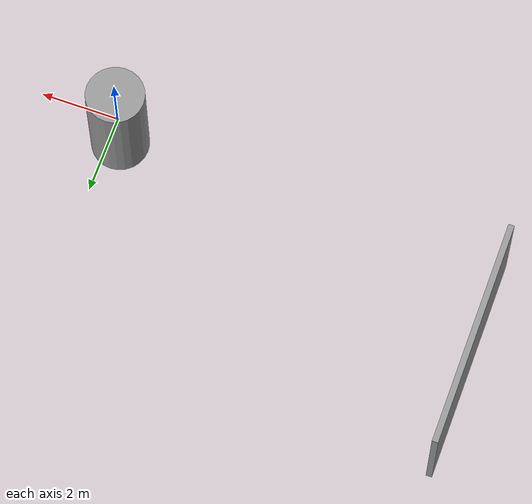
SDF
<?xml version='1.0'?>
<sdf version='1.6'>
  <model name='unit_cylinder'>
    <link name='link'>
      <inertial>
        <mass>6.74216</mass>
        <inertia>
          <ixx>6.16343</ixx>
          <ixy>0</ixy>
          <ixz>0</ixz>
          <iyy>6.16343</iyy>
          <iyz>0</iyz>
          <izz>1.86234</izz>
        </inertia>
        <pose frame=''>0 0 0 0 -0 0</pose>
      </inertial>
      <self_collide>0</self_collide>
      <enable_wind>0</enable_wind>
      <kinematic>0</kinematic>
      <pose frame=''>0 0 0 0 -0 0</pose>
      <visual name='visual'>
        <geometry>
          <cylinder>
            <radius>0.743268</radius>
            <length>3.05166</length>
          </cylinder>
        </geometry>
        <material>
          <script>
            <name>Gazebo/Grey</name>
            <uri>file://media/materials/scripts/gazebo.material</uri>
          </script>
        </material>
        <pose frame=''>0 0 0 0 -0 0</pose>
        <transparency>0</transparency>
        <cast_shadows>1</cast_shadows>
      </visual>
      <collision name='collision'>
        <laser_retro>0</laser_retro>
        <max_contacts>10</max_contacts>
        <pose frame=''>0 0 0 0 -0 0</pose>
        <geometry>
          <cylinder>
            <radius>0.743268</radius>
            <length>3.05166</length>
          </cylinder>
        </geometry>
        <surface>
          <friction>
            <ode>
              <mu>1</mu>
              <mu2>1</mu2>
              <fdir1>0 0 0</fdir1>
              <slip1>0</slip1>
              <slip2>0</slip2>
            </ode>
            <torsional>
              <coefficient>1</coefficient>
              <patch_radius>0</patch_radius>
              <surface_radius>0</surface_radius>
              <use_patch_radius>1</use_patch_radius>
              <ode>
                <slip>0</slip>
              </ode>
            </torsional>
          </friction>
          <bounce>
            <restitution_coefficient>0</restitution_coefficient>
            <threshold>1e+06</threshold>
          </bounce>
          <contact>
            <collide_without_contact>0</collide_without_contact>
            <collide_without_contact_bitmask>1</collide_without_contact_bitmask>
            <collide_bitmask>1</collide_bitmask>
            <ode>
              <soft_cfm>0</soft_cfm>
              <soft_erp>0.2</soft_erp>
              <kp>1e+13</kp>
              <kd>1</kd>
              <max_vel>0.01</max_vel>
              <min_depth>0</min_depth>
            </ode>
            <bullet>
              <split_impulse>1</split_impulse>
              <split_impulse_penetration_threshold>-0.01</split_impulse_penetration_threshold>
              <soft_cfm>0</soft_cfm>
              <soft_erp>0.2</soft_erp>
              <kp>1e+13</kp>
              <kd>1</kd>
            </bullet>
          </contact>
        </surface>
      </collision>
    </link>
    <link name='link_0'>
      <inertial>
        <mass>2.57692</mass>
        <inertia>
          <ixx>8.98703</ixx>
          <ixy>0</ixy>
          <ixz>0</ixz>
          <iyy>1.78597</iyy>
          <iyz>0</iyz>
          <izz>7.21131</izz>
        </inertia>
        <pose frame=''>0 0 0 0 -0 0</pose>
      </inertial>
      <pose frame=''>-10.1923 2.83685 -4.8e-05 -3e-06 -4e-06 -0</pose>
      <visual name='visual'>
        <pose frame=''>0 0 0 0 -0 0</pose>
        <geometry>
          <box>
            <size>0.154446 5.79286 2.87974</size>
          </box>
        </geometry>
        <material>
          <lighting>1</lighting>
          <script>
            <uri>file://media/materials/scripts/gazebo.material</uri>
            <name>Gazebo/Grey</name>
          </script>
        </material>
        <transparency>0</transparency>
        <cast_shadows>1</cast_shadows>
      </visual>
      <collision name='collision'>
        <laser_retro>0</laser_retro>
        <max_contacts>10</max_contacts>
        <pose frame=''>0 0 0 0 -0 0</pose>
        <geometry>
          <box>
            <size>0.154446 5.79286 2.87974</size>
          </box>
        </geometry>
        <surface>
          <friction>
            <ode>
              <mu>1</mu>
              <mu2>1</mu2>
              <fdir1>0 0 0</fdir1>
              <slip1>0</slip1>
              <slip2>0</slip2>
            </ode>
            <torsional>
              <coefficient>1</coefficient>
              <patch_radius>0</patch_radius>
              <surface_radius>0</surface_radius>
              <use_patch_radius>1</use_patch_radius>
              <ode>
                <slip>0</slip>
              </ode>
            </torsional>
          </friction>
          <bounce>
            <restitution_coefficient>0</restitution_coefficient>
            <threshold>1e+06</threshold>
          </bounce>
          <contact>
            <collide_without_contact>0</collide_without_contact>
            <collide_without_contact_bitmask>1</collide_without_contact_bitmask>
            <collide_bitmask>1</collide_bitmask>
            <ode>
              <soft_cfm>0</soft_cfm>
              <soft_erp>0.2</soft_erp>
              <kp>1e+13</kp>
              <kd>1</kd>
              <max_vel>0.01</max_vel>
              <min_depth>0</min_depth>
            </ode>
            <bullet>
              <split_impulse>1</split_impulse>
              <split_impulse_penetration_threshold>-0.01</split_impulse_penetration_threshold>
              <soft_cfm>0</soft_cfm>
              <soft_erp>0.2</soft_erp>
              <kp>1e+13</kp>
              <kd>1</kd>
            </bullet>
          </contact>
        </surface>
      </collision>
    </link>
    <static>1</static>
    <allow_auto_disable>1</allow_auto_disable>
  </model>
</sdf>
